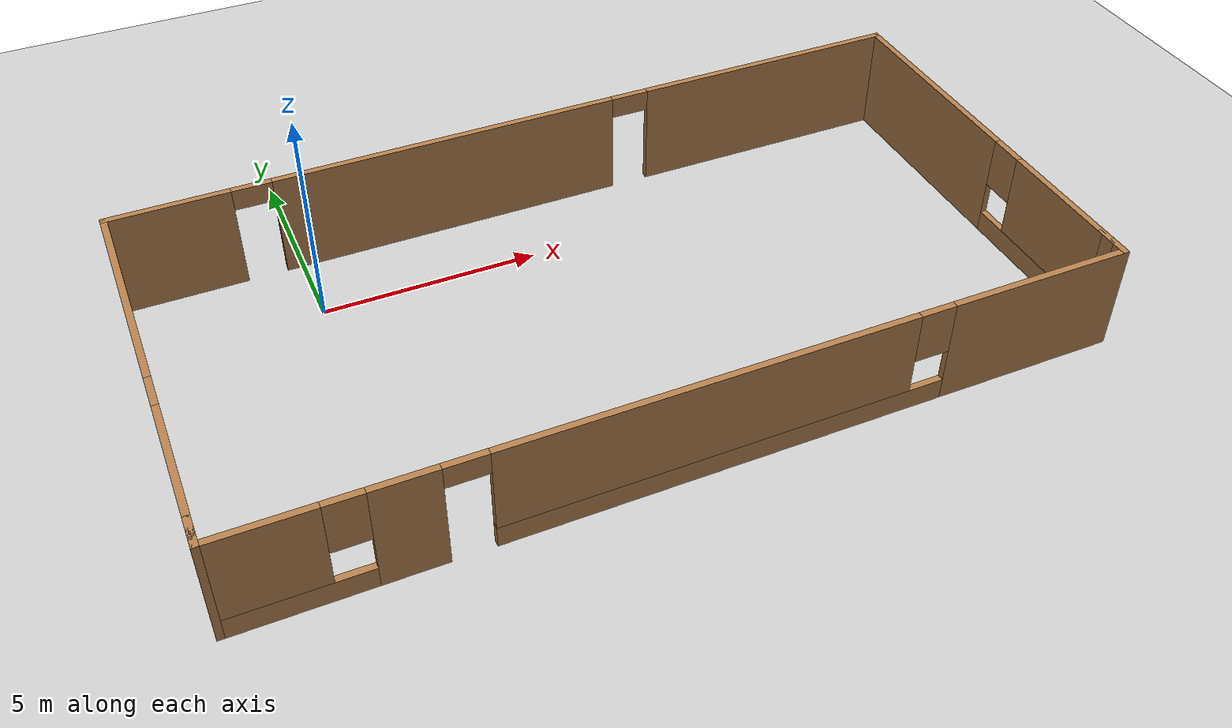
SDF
<sdf version="1.7">
 <world name="default">
  <light name="sun" type="directional">
   <pose>0 0 10 0 -0 0</pose>
   <diffuse>0.8 0.8 0.8 1</diffuse>
   <specular>0.2 0.2 0.2 1</specular>
   <attenuation>
    <range>1000</range>
    <constant>0.9</constant>
    <linear>0.01</linear>
    <quadratic>0.001</quadratic>
   </attenuation>
   <direction>-0.5 0.1 -0.9</direction>
   <spot><inner_angle>0</inner_angle><outer_angle>0</outer_angle><falloff>0</falloff></spot>
  </light>
  <model name="ground_plane">
   <static>1</static>
   <link name="link">
    <collision name="collision">
     <geometry><plane><normal>0 0 1</normal><size>100 100</size></plane></geometry>
     <surface>
      <contact><collide_bitmask>65535</collide_bitmask></contact>
      <friction><ode><mu>100</mu><mu2>50</mu2></ode></friction>
     </surface>
    </collision>
    <visual name="visual">
     <cast_shadows>0</cast_shadows>
     <geometry><plane><normal>0 0 1</normal><size>100 100</size></plane></geometry>
     <material>
      <script><uri>file://media/materials/scripts/gazebo.material</uri><name>Gazebo/Grey</name></script>
     </material>
    </visual>
   </link>
  </model>
  <gravity>0 0 -9.8</gravity>
  <magnetic_field>6e-06 2.3e-05 -4.2e-05</magnetic_field>
  <atmosphere type="adiabatic"/>
  <physics type="ode">
   <max_step_size>0.001</max_step_size>
   <real_time_factor>1</real_time_factor>
   <real_time_update_rate>1000</real_time_update_rate>
  </physics>
  <scene><ambient>0.4 0.4 0.4 1</ambient><background>0.7 0.7 0.7 1</background><shadows>1</shadows></scene>
  <audio><device>default</device></audio>
  <spherical_coordinates>
   <surface_model>EARTH_WGS84</surface_model>
   <latitude_deg>0</latitude_deg>
   <longitude_deg>0</longitude_deg>
   <elevation>0</elevation>
   <heading_deg>0</heading_deg>
  </spherical_coordinates>
  <model name="gaz_world">
   <pose>5.59126 -2.92597 0 0 -0 0</pose>
   <link name="Wall_10">
    <pose>9.55 0.35 0 0 -0 -1.5708</pose>
    <visual name="Wall_10_Visual_0">
     <pose>-1.87115 0 1.25 0 -0 0</pose>
     <geometry><box><size>5.2577 0.15 2.5</size></box></geometry>
     <material>
      <script><uri>file://media/materials/scripts/gazebo.material</uri><name>Gazebo/Wood</name></script>
      <ambient>1 1 1 1</ambient>
     </material>
     <meta><layer>0</layer></meta>
    </visual>
    <collision name="Wall_10_Collision_0">
     <geometry><box><size>5.2577 0.15 2.5</size></box></geometry>
     <pose>-1.87115 0 1.25 0 -0 0</pose>
    </collision>
    <visual name="Wall_10_Visual_1">
     <pose>2.62885 0 0.25 0 -0 0</pose>
     <geometry><box><size>3.7423 0.15 0.5</size></box></geometry>
     <material>
      <script><uri>file://media/materials/scripts/gazebo.material</uri><name>Gazebo/Wood</name></script>
      <ambient>1 1 1 1</ambient>
     </material>
     <meta><layer>0</layer></meta>
    </visual>
    <collision name="Wall_10_Collision_1">
     <geometry><box><size>3.7423 0.15 0.5</size></box></geometry>
     <pose>2.62885 0 0.25 0 -0 0</pose>
    </collision>
    <visual name="Wall_10_Visual_2">
     <pose>3.02885 0 1.5 0 -0 0</pose>
     <geometry><box><size>2.9423 0.15 2</size></box></geometry>
     <material>
      <script><uri>file://media/materials/scripts/gazebo.material</uri><name>Gazebo/Wood</name></script>
      <ambient>1 1 1 1</ambient>
     </material>
     <meta><layer>0</layer></meta>
    </visual>
    <collision name="Wall_10_Collision_2">
     <geometry><box><size>2.9423 0.15 2</size></box></geometry>
     <pose>3.02885 0 1.5 0 -0 0</pose>
    </collision>
    <visual name="Wall_10_Visual_3">
     <pose>1.1577 0 1.9 0 -0 0</pose>
     <geometry><box><size>0.8 0.15 1.2</size></box></geometry>
     <material>
      <script><uri>file://media/materials/scripts/gazebo.material</uri><name>Gazebo/Wood</name></script>
      <ambient>1 1 1 1</ambient>
     </material>
     <meta><layer>0</layer></meta>
    </visual>
    <collision name="Wall_10_Collision_3">
     <geometry><box><size>0.8 0.15 1.2</size></box></geometry>
     <pose>1.1577 0 1.9 0 -0 0</pose>
    </collision>
   </link>
   <link name="Wall_11">
    <collision name="Wall_11_Collision">
     <geometry><box><size>0.5 0.15 2.5</size></box></geometry>
     <pose>0 0 1.25 0 -0 0</pose>
    </collision>
    <visual name="Wall_11_Visual">
     <pose>0 0 1.25 0 -0 0</pose>
     <geometry><box><size>0.5 0.15 2.5</size></box></geometry>
     <material>
      <script><uri>file://media/materials/scripts/gazebo.material</uri><name>Gazebo/Wood</name></script>
      <ambient>1 1 1 1</ambient>
     </material>
     <meta><layer>0</layer></meta>
    </visual>
    <pose>9.55 -4.25 0 0 -0 -1.5708</pose>
   </link>
   <link name="Wall_12">
    <collision name="Wall_12_Collision">
     <geometry><box><size>0.5 0.15 2.5</size></box></geometry>
     <pose>0 0 1.25 0 -0 0</pose>
    </collision>
    <visual name="Wall_12_Visual">
     <pose>0 0 1.25 0 -0 0</pose>
     <geometry><box><size>0.5 0.15 2.5</size></box></geometry>
     <material>
      <script><uri>file://media/materials/scripts/gazebo.material</uri><name>Gazebo/Wood</name></script>
      <ambient>1 1 1 1</ambient>
     </material>
     <meta><layer>0</layer></meta>
    </visual>
    <pose>9.55 -4.6 0 0 -0 -1.5708</pose>
   </link>
   <link name="Wall_13">
    <pose>-0 -4.775 0 0 -0 3.14159</pose>
    <visual name="Wall_13_Visual_0">
     <pose>-7.50714 0 1.25 0 -0 0</pose>
     <geometry><box><size>4.23572 0.15 2.5</size></box></geometry>
     <material>
      <script><uri>file://media/materials/scripts/gazebo.material</uri><name>Gazebo/Wood</name></script>
      <ambient>1 1 1 1</ambient>
     </material>
     <meta><layer>0</layer></meta>
    </visual>
    <collision name="Wall_13_Collision_0">
     <geometry><box><size>4.23572 0.15 2.5</size></box></geometry>
     <pose>-7.50714 0 1.25 0 -0 0</pose>
    </collision>
    <visual name="Wall_13_Visual_1">
     <pose>5.9551 0 1.25 0 -0 0</pose>
     <geometry><box><size>1.35782 0.15 2.5</size></box></geometry>
     <material>
      <script><uri>file://media/materials/scripts/gazebo.material</uri><name>Gazebo/Wood</name></script>
      <ambient>1 1 1 1</ambient>
     </material>
     <meta><layer>0</layer></meta>
    </visual>
    <collision name="Wall_13_Collision_1">
     <geometry><box><size>1.35782 0.15 2.5</size></box></geometry>
     <pose>5.9551 0 1.25 0 -0 0</pose>
    </collision>
    <visual name="Wall_13_Visual_2">
     <pose>-0.506544 0 0.25 0 -0 0</pose>
     <geometry><box><size>9.76547 0.15 0.5</size></box></geometry>
     <material>
      <script><uri>file://media/materials/scripts/gazebo.material</uri><name>Gazebo/Wood</name></script>
      <ambient>1 1 1 1</ambient>
     </material>
     <meta><layer>0</layer></meta>
    </visual>
    <collision name="Wall_13_Collision_2">
     <geometry><box><size>9.76547 0.15 0.5</size></box></geometry>
     <pose>-0.506544 0 0.25 0 -0 0</pose>
    </collision>
    <visual name="Wall_13_Visual_3">
     <pose>8.1295 0 0.25 0 -0 0</pose>
     <geometry><box><size>2.99099 0.15 0.5</size></box></geometry>
     <material>
      <script><uri>file://media/materials/scripts/gazebo.material</uri><name>Gazebo/Wood</name></script>
      <ambient>1 1 1 1</ambient>
     </material>
     <meta><layer>0</layer></meta>
    </visual>
    <collision name="Wall_13_Collision_3">
     <geometry><box><size>2.99099 0.15 0.5</size></box></geometry>
     <pose>8.1295 0 0.25 0 -0 0</pose>
    </collision>
    <visual name="Wall_13_Visual_4">
     <pose>-0.106544 0 1.5 0 -0 0</pose>
     <geometry><box><size>8.96547 0.15 2</size></box></geometry>
     <material>
      <script><uri>file://media/materials/scripts/gazebo.material</uri><name>Gazebo/Wood</name></script>
      <ambient>1 1 1 1</ambient>
     </material>
     <meta><layer>0</layer></meta>
    </visual>
    <collision name="Wall_13_Collision_4">
     <geometry><box><size>8.96547 0.15 2</size></box></geometry>
     <pose>-0.106544 0 1.5 0 -0 0</pose>
    </collision>
    <visual name="Wall_13_Visual_5">
     <pose>-0.106544 0 1.5 0 -0 0</pose>
     <geometry><box><size>8.96547 0.15 2</size></box></geometry>
     <material>
      <script><uri>file://media/materials/scripts/gazebo.material</uri><name>Gazebo/Wood</name></script>
      <ambient>1 1 1 1</ambient>
     </material>
     <meta><layer>0</layer></meta>
    </visual>
    <collision name="Wall_13_Collision_5">
     <geometry><box><size>8.96547 0.15 2</size></box></geometry>
     <pose>-0.106544 0 1.5 0 -0 0</pose>
    </collision>
    <visual name="Wall_13_Visual_6">
     <pose>8.5295 0 1.5 0 -0 0</pose>
     <geometry><box><size>2.19099 0.15 2</size></box></geometry>
     <material>
      <script><uri>file://media/materials/scripts/gazebo.material</uri><name>Gazebo/Wood</name></script>
      <ambient>1 1 1 1</ambient>
     </material>
     <meta><layer>0</layer></meta>
    </visual>
    <collision name="Wall_13_Collision_6">
     <geometry><box><size>2.19099 0.15 2</size></box></geometry>
     <pose>8.5295 0 1.5 0 -0 0</pose>
    </collision>
    <visual name="Wall_13_Visual_7">
     <pose>-4.98928 0 1.9 0 -0 0</pose>
     <geometry><box><size>0.8 0.15 1.2</size></box></geometry>
     <material>
      <script><uri>file://media/materials/scripts/gazebo.material</uri><name>Gazebo/Wood</name></script>
      <ambient>1 1 1 1</ambient>
     </material>
     <meta><layer>0</layer></meta>
    </visual>
    <collision name="Wall_13_Collision_7">
     <geometry><box><size>0.8 0.15 1.2</size></box></geometry>
     <pose>-4.98928 0 1.9 0 -0 0</pose>
    </collision>
    <visual name="Wall_13_Visual_8">
     <pose>7.03401 0 1.9 0 -0 0</pose>
     <geometry><box><size>0.8 0.15 1.2</size></box></geometry>
     <material>
      <script><uri>file://media/materials/scripts/gazebo.material</uri><name>Gazebo/Wood</name></script>
      <ambient>1 1 1 1</ambient>
     </material>
     <meta><layer>0</layer></meta>
    </visual>
    <collision name="Wall_13_Collision_8">
     <geometry><box><size>0.8 0.15 1.2</size></box></geometry>
     <pose>7.03401 0 1.9 0 -0 0</pose>
    </collision>
    <visual name="Wall_13_Visual_9">
     <pose>4.82619 0 2.25 0 -0 0</pose>
     <geometry><box><size>0.9 0.15 0.5</size></box></geometry>
     <material>
      <script><uri>file://media/materials/scripts/gazebo.material</uri><name>Gazebo/Wood</name></script>
      <ambient>1 1 1 1</ambient>
     </material>
     <meta><layer>0</layer></meta>
    </visual>
    <collision name="Wall_13_Collision_9">
     <geometry><box><size>0.9 0.15 0.5</size></box></geometry>
     <pose>4.82619 0 2.25 0 -0 0</pose>
    </collision>
    <visual name="Wall_13_Visual_10">
     <pose>4.82619 0 2.25 0 -0 0</pose>
     <geometry><box><size>0.9 0.15 0.5</size></box></geometry>
     <material>
      <script><uri>file://media/materials/scripts/gazebo.material</uri><name>Gazebo/Wood</name></script>
      <ambient>1 1 1 1</ambient>
     </material>
     <meta><layer>0</layer></meta>
    </visual>
    <collision name="Wall_13_Collision_10">
     <geometry><box><size>0.9 0.15 0.5</size></box></geometry>
     <pose>4.82619 0 2.25 0 -0 0</pose>
    </collision>
   </link>
   <link name="Wall_14">
    <collision name="Wall_14_Collision">
     <geometry><box><size>0.75 0.15 2.5</size></box></geometry>
     <pose>0 0 1.25 0 -0 0</pose>
    </collision>
    <visual name="Wall_14_Visual">
     <pose>0 0 1.25 0 -0 0</pose>
     <geometry><box><size>0.75 0.15 2.5</size></box></geometry>
     <material>
      <script><uri>file://media/materials/scripts/gazebo.material</uri><name>Gazebo/Wood</name></script>
      <ambient>1 1 1 1</ambient>
     </material>
     <meta><layer>0</layer></meta>
    </visual>
    <pose>-9.55 -4.475 0 0 -0 1.5708</pose>
   </link>
   <link name="Wall_8">
    <pose>-9.55 0.1 0 0 -0 1.5708</pose>
    <visual name="Wall_8_Visual_0">
     <pose>-3.04215 0 1.25 0 -0 0</pose>
     <geometry><box><size>3.4157 0.15 2.5</size></box></geometry>
     <material>
      <script><uri>file://media/materials/scripts/gazebo.material</uri><name>Gazebo/Wood</name></script>
      <ambient>1 1 1 1</ambient>
     </material>
     <meta><layer>0</layer></meta>
    </visual>
    <collision name="Wall_8_Collision_0">
     <geometry><box><size>3.4157 0.15 2.5</size></box></geometry>
     <pose>-3.04215 0 1.25 0 -0 0</pose>
    </collision>
    <visual name="Wall_8_Visual_1">
     <pose>1.70785 0 0.25 0 -0 0</pose>
     <geometry><box><size>6.0843 0.15 0.5</size></box></geometry>
     <material>
      <script><uri>file://media/materials/scripts/gazebo.material</uri><name>Gazebo/Wood</name></script>
      <ambient>1 1 1 1</ambient>
     </material>
     <meta><layer>0</layer></meta>
    </visual>
    <collision name="Wall_8_Collision_1">
     <geometry><box><size>6.0843 0.15 0.5</size></box></geometry>
     <pose>1.70785 0 0.25 0 -0 0</pose>
    </collision>
    <visual name="Wall_8_Visual_2">
     <pose>2.10785 0 1.5 0 -0 0</pose>
     <geometry><box><size>5.2843 0.15 2</size></box></geometry>
     <material>
      <script><uri>file://media/materials/scripts/gazebo.material</uri><name>Gazebo/Wood</name></script>
      <ambient>1 1 1 1</ambient>
     </material>
     <meta><layer>0</layer></meta>
    </visual>
    <collision name="Wall_8_Collision_2">
     <geometry><box><size>5.2843 0.15 2</size></box></geometry>
     <pose>2.10785 0 1.5 0 -0 0</pose>
    </collision>
    <visual name="Wall_8_Visual_3">
     <pose>-0.934298 0 1.9 0 -0 0</pose>
     <geometry><box><size>0.8 0.15 1.2</size></box></geometry>
     <material>
      <script><uri>file://media/materials/scripts/gazebo.material</uri><name>Gazebo/Wood</name></script>
      <ambient>1 1 1 1</ambient>
     </material>
     <meta><layer>0</layer></meta>
    </visual>
    <collision name="Wall_8_Collision_3">
     <geometry><box><size>0.8 0.15 1.2</size></box></geometry>
     <pose>-0.934298 0 1.9 0 -0 0</pose>
    </collision>
   </link>
   <link name="Wall_9">
    <pose>-0 4.775 0 0 -0 0</pose>
    <visual name="Wall_9_Visual_0">
     <pose>-8.2353 0 1.25 0 -0 0</pose>
     <geometry><box><size>2.7794 0.15 2.5</size></box></geometry>
     <material>
      <script><uri>file://media/materials/scripts/gazebo.material</uri><name>Gazebo/Wood</name></script>
      <ambient>1 1 1 1</ambient>
     </material>
     <meta><layer>0</layer></meta>
    </visual>
    <collision name="Wall_9_Collision_0">
     <geometry><box><size>2.7794 0.15 2.5</size></box></geometry>
     <pose>-8.2353 0 1.25 0 -0 0</pose>
    </collision>
    <visual name="Wall_9_Visual_1">
     <pose>-1.86027 0 1.25 0 -0 0</pose>
     <geometry><box><size>8.17067 0.15 2.5</size></box></geometry>
     <material>
      <script><uri>file://media/materials/scripts/gazebo.material</uri><name>Gazebo/Wood</name></script>
      <ambient>1 1 1 1</ambient>
     </material>
     <meta><layer>0</layer></meta>
    </visual>
    <collision name="Wall_9_Collision_1">
     <geometry><box><size>8.17067 0.15 2.5</size></box></geometry>
     <pose>-1.86027 0 1.25 0 -0 0</pose>
    </collision>
    <visual name="Wall_9_Visual_2">
     <pose>6.37503 0 1.25 0 -0 0</pose>
     <geometry><box><size>6.49994 0.15 2.5</size></box></geometry>
     <material>
      <script><uri>file://media/materials/scripts/gazebo.material</uri><name>Gazebo/Wood</name></script>
      <ambient>1 1 1 1</ambient>
     </material>
     <meta><layer>0</layer></meta>
    </visual>
    <collision name="Wall_9_Collision_2">
     <geometry><box><size>6.49994 0.15 2.5</size></box></geometry>
     <pose>6.37503 0 1.25 0 -0 0</pose>
    </collision>
    <visual name="Wall_9_Visual_3">
     <pose>-6.3956 0 2.25 0 -0 0</pose>
     <geometry><box><size>0.9 0.15 0.5</size></box></geometry>
     <material>
      <script><uri>file://media/materials/scripts/gazebo.material</uri><name>Gazebo/Wood</name></script>
      <ambient>1 1 1 1</ambient>
     </material>
     <meta><layer>0</layer></meta>
    </visual>
    <collision name="Wall_9_Collision_3">
     <geometry><box><size>0.9 0.15 0.5</size></box></geometry>
     <pose>-6.3956 0 2.25 0 -0 0</pose>
    </collision>
    <visual name="Wall_9_Visual_4">
     <pose>2.67506 0 2.25 0 -0 0</pose>
     <geometry><box><size>0.9 0.15 0.5</size></box></geometry>
     <material>
      <script><uri>file://media/materials/scripts/gazebo.material</uri><name>Gazebo/Wood</name></script>
      <ambient>1 1 1 1</ambient>
     </material>
     <meta><layer>0</layer></meta>
    </visual>
    <collision name="Wall_9_Collision_4">
     <geometry><box><size>0.9 0.15 0.5</size></box></geometry>
     <pose>2.67506 0 2.25 0 -0 0</pose>
    </collision>
   </link>
   <static>1</static>
  </model>
 </world>
</sdf>
